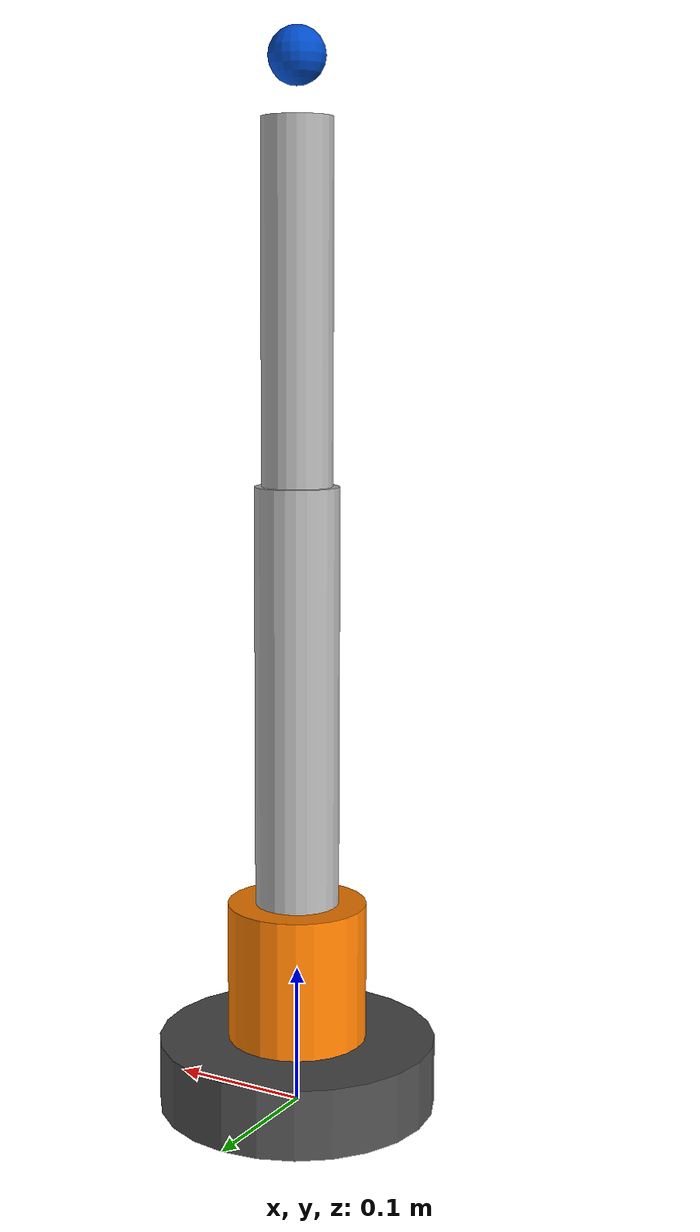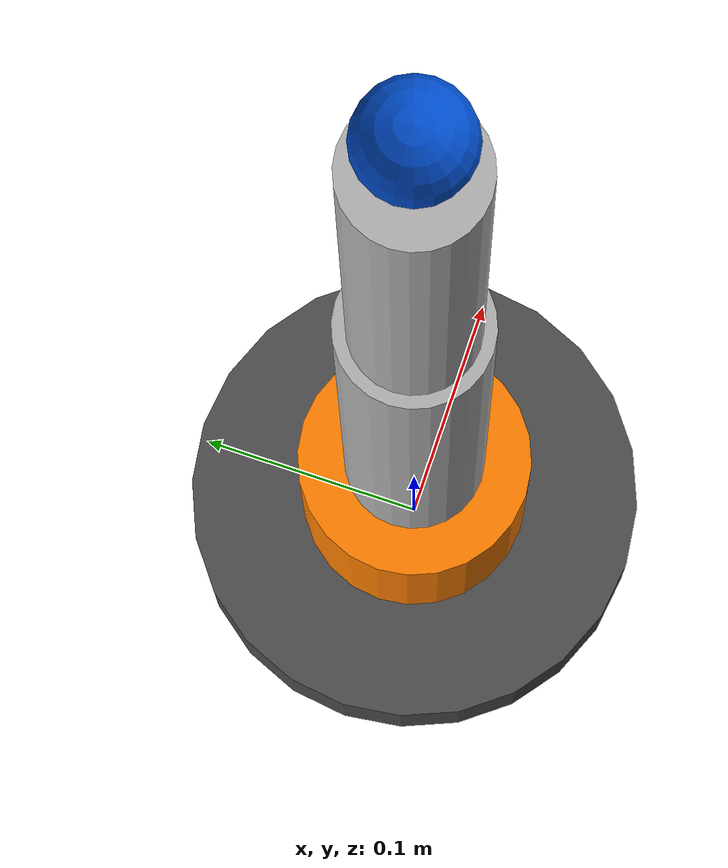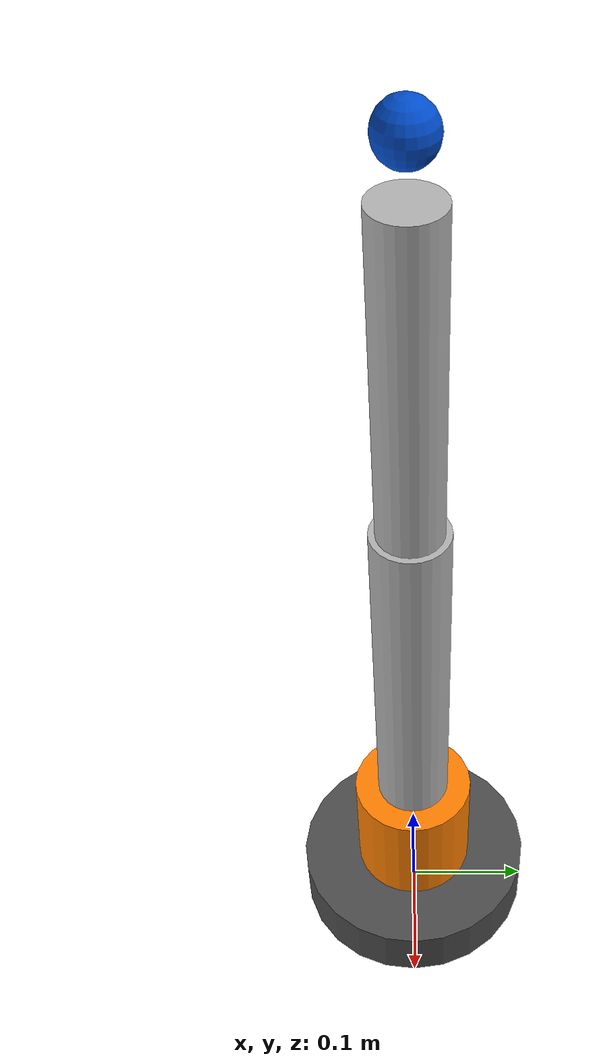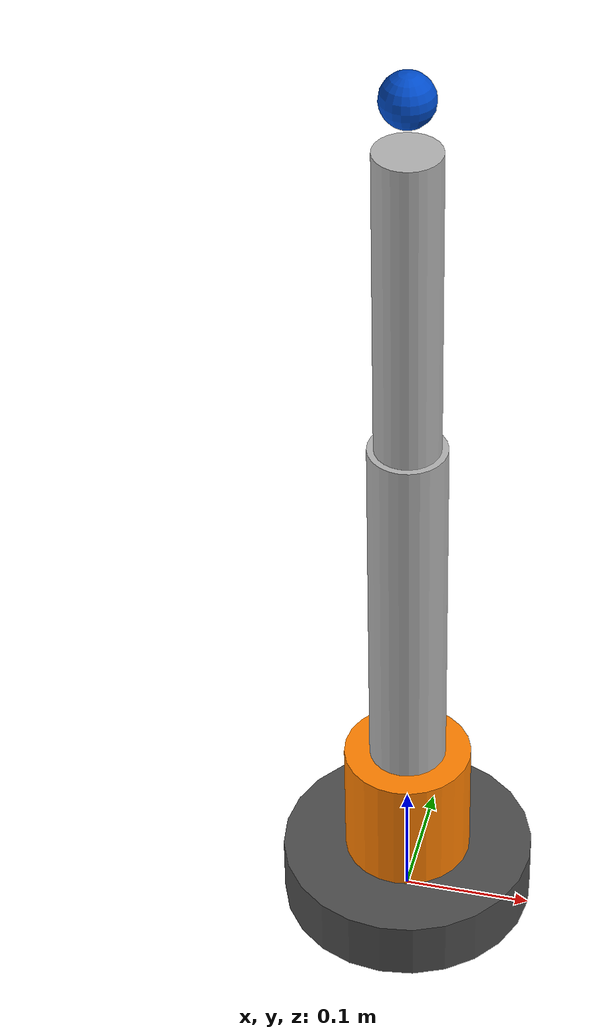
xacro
<?xml version="1.0"?>
<robot name="robotic_arm_4dof" xmlns:xacro="http://www.ros.org/wiki/xacro">

  <!-- Include material and macro definitions -->
  <xacro:include filename="materials.xacro"/>
  <xacro:include filename="macros.xacro"/>

  <!-- Robot parameters -->
  <xacro:property name="pi" value="3.14159"/>

  <!-- Link dimensions -->
  <xacro:property name="base_radius" value="0.1"/>
  <xacro:property name="base_length" value="0.05"/>
  <xacro:property name="shoulder_radius" value="0.05"/>
  <xacro:property name="shoulder_length" value="0.1"/>
  <xacro:property name="upper_arm_length" value="0.3"/>
  <xacro:property name="upper_arm_radius" value="0.03"/>
  <xacro:property name="forearm_length" value="0.25"/>
  <xacro:property name="forearm_radius" value="0.025"/>
  <xacro:property name="wrist_radius" value="0.02"/>
  <xacro:property name="wrist_length" value="0.08"/>

  <!-- Link masses -->
  <xacro:property name="base_mass" value="2.0"/>
  <xacro:property name="shoulder_mass" value="1.0"/>
  <xacro:property name="upper_arm_mass" value="1.5"/>
  <xacro:property name="forearm_mass" value="1.0"/>
  <xacro:property name="wrist_mass" value="0.5"/>

  <!-- Joint limits (in radians) -->
  <xacro:property name="base_joint_lower" value="${-pi}"/>
  <xacro:property name="base_joint_upper" value="${pi}"/>
  <xacro:property name="shoulder_joint_lower" value="${-pi/2}"/>
  <xacro:property name="shoulder_joint_upper" value="${pi/2}"/>
  <xacro:property name="elbow_joint_lower" value="${-pi}"/>
  <xacro:property name="elbow_joint_upper" value="${pi}"/>
  <xacro:property name="wrist_joint_lower" value="${-pi/2}"/>
  <xacro:property name="wrist_joint_upper" value="${pi/2}"/>

  <!-- World link (fixed reference frame) -->
  <link name="world"/>

  <!-- Base link -->
  <link name="base_link">
    <visual>
      <origin xyz="0 0 ${base_length/2}" rpy="0 0 0"/>
      <geometry>
        <cylinder radius="${base_radius}" length="${base_length}"/>
      </geometry>
      <material name="base_material"/>
    </visual>
    <collision>
      <origin xyz="0 0 ${base_length/2}" rpy="0 0 0"/>
      <geometry>
        <cylinder radius="${base_radius}" length="${base_length}"/>
      </geometry>
    </collision>
    <xacro:cylinder_inertial mass="${base_mass}" radius="${base_radius}" length="${base_length}"/>
  </link>

  <!-- Shoulder link -->
  <link name="shoulder_link">
    <visual>
      <origin xyz="0 0 ${shoulder_length/2}" rpy="0 0 0"/>
      <geometry>
        <cylinder radius="${shoulder_radius}" length="${shoulder_length}"/>
      </geometry>
      <material name="joint_material"/>
    </visual>
    <collision>
      <origin xyz="0 0 ${shoulder_length/2}" rpy="0 0 0"/>
      <geometry>
        <cylinder radius="${shoulder_radius}" length="${shoulder_length}"/>
      </geometry>
    </collision>
    <xacro:cylinder_inertial mass="${shoulder_mass}" radius="${shoulder_radius}" length="${shoulder_length}"/>
  </link>

  <!-- Upper arm link -->
  <link name="upper_arm_link">
    <visual>
      <origin xyz="0 0 ${upper_arm_length/2}" rpy="0 0 0"/>
      <geometry>
        <cylinder radius="${upper_arm_radius}" length="${upper_arm_length}"/>
      </geometry>
      <material name="link_material"/>
    </visual>
    <collision>
      <origin xyz="0 0 ${upper_arm_length/2}" rpy="0 0 0"/>
      <geometry>
        <cylinder radius="${upper_arm_radius}" length="${upper_arm_length}"/>
      </geometry>
    </collision>
    <xacro:cylinder_inertial mass="${upper_arm_mass}" radius="${upper_arm_radius}" length="${upper_arm_length}"/>
  </link>

  <!-- Forearm link -->
  <link name="forearm_link">
    <visual>
      <origin xyz="0 0 ${forearm_length/2}" rpy="0 0 0"/>
      <geometry>
        <cylinder radius="${forearm_radius}" length="${forearm_length}"/>
      </geometry>
      <material name="link_material"/>
    </visual>
    <collision>
      <origin xyz="0 0 ${forearm_length/2}" rpy="0 0 0"/>
      <geometry>
        <cylinder radius="${forearm_radius}" length="${forearm_length}"/>
      </geometry>
    </collision>
    <xacro:cylinder_inertial mass="${forearm_mass}" radius="${forearm_radius}" length="${forearm_length}"/>
  </link>

  <!-- Wrist link -->
  <link name="wrist_link">
    <visual>
      <origin xyz="0 0 ${wrist_length/2}" rpy="0 0 0"/>
      <geometry>
        <sphere radius="${wrist_radius}"/>
      </geometry>
      <material name="end_effector_material"/>
    </visual>
    <collision>
      <origin xyz="0 0 ${wrist_length/2}" rpy="0 0 0"/>
      <geometry>
        <sphere radius="${wrist_radius}"/>
      </geometry>
    </collision>
    <xacro:sphere_inertial mass="${wrist_mass}" radius="${wrist_radius}"/>
  </link>

  <!-- Joints -->

  <!-- Fixed joint from world to base -->
  <xacro:fixed_joint name="world_to_base" parent="world" child="base_link" xyz="0 0 0" rpy="0 0 0"/>

  <!-- Base joint (revolute) -->
  <xacro:revolute_joint name="base_joint"
                        parent="base_link"
                        child="shoulder_link"
                        xyz="0 0 ${base_length}"
                        rpy="0 0 0"
                        axis="0 0 1"
                        lower="${base_joint_lower}"
                        upper="${base_joint_upper}"
                        velocity="2.0"
                        effort="100.0"/>

  <!-- Shoulder joint (revolute) -->
  <xacro:revolute_joint name="shoulder_joint"
                        parent="shoulder_link"
                        child="upper_arm_link"
                        xyz="0 0 ${shoulder_length}"
                        rpy="0 0 0"
                        axis="0 1 0"
                        lower="${shoulder_joint_lower}"
                        upper="${shoulder_joint_upper}"
                        velocity="2.0"
                        effort="100.0"/>

  <!-- Elbow joint (revolute) -->
  <xacro:revolute_joint name="elbow_joint"
                        parent="upper_arm_link"
                        child="forearm_link"
                        xyz="0 0 ${upper_arm_length}"
                        rpy="0 0 0"
                        axis="0 1 0"
                        lower="${elbow_joint_lower}"
                        upper="${elbow_joint_upper}"
                        velocity="2.0"
                        effort="50.0"/>

  <!-- Wrist joint (revolute) -->
  <xacro:revolute_joint name="wrist_joint"
                        parent="forearm_link"
                        child="wrist_link"
                        xyz="0 0 ${forearm_length}"
                        rpy="0 0 0"
                        axis="0 1 0"
                        lower="${wrist_joint_lower}"
                        upper="${wrist_joint_upper}"
                        velocity="2.0"
                        effort="25.0"/>

</robot>

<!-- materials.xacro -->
<robot xmlns:xacro="http://www.ros.org/wiki/xacro">

  <!-- Material definitions for the robotic arm -->

  <!-- Base material - Dark gray -->
  <material name="base_material">
    <color rgba="0.3 0.3 0.3 1.0"/>
  </material>

  <!-- Link material - Light gray -->
  <material name="link_material">
    <color rgba="0.7 0.7 0.7 1.0"/>
  </material>

  <!-- Joint material - Orange -->
  <material name="joint_material">
    <color rgba="1.0 0.5 0.0 1.0"/>
  </material>

  <!-- End effector material - Blue -->
  <material name="end_effector_material">
    <color rgba="0.0 0.3 0.8 1.0"/>
  </material>

  <!-- Gazebo materials for simulation -->
  <gazebo reference="base_link">
    <material>Gazebo/DarkGrey</material>
  </gazebo>

  <gazebo reference="shoulder_link">
    <material>Gazebo/Grey</material>
  </gazebo>

  <gazebo reference="upper_arm_link">
    <material>Gazebo/Grey</material>
  </gazebo>

  <gazebo reference="forearm_link">
    <material>Gazebo/Grey</material>
  </gazebo>

  <gazebo reference="wrist_link">
    <material>Gazebo/Blue</material>
  </gazebo>

</robot>

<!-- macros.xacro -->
<robot xmlns:xacro="http://www.ros.org/wiki/xacro">

  <!-- Macro for inertial properties of a box -->
  <xacro:macro name="box_inertial" params="mass x y z">
    <inertial>
      <mass value="${mass}"/>
      <inertia ixx="${mass * (y*y + z*z) / 12.0}"
               ixy="0.0" ixz="0.0"
               iyy="${mass * (x*x + z*z) / 12.0}"
               iyz="0.0"
               izz="${mass * (x*x + y*y) / 12.0}"/>
    </inertial>
  </xacro:macro>

  <!-- Macro for inertial properties of a cylinder -->
  <xacro:macro name="cylinder_inertial" params="mass radius length">
    <inertial>
      <mass value="${mass}"/>
      <inertia ixx="${mass * (3*radius*radius + length*length) / 12.0}"
               ixy="0.0" ixz="0.0"
               iyy="${mass * (3*radius*radius + length*length) / 12.0}"
               iyz="0.0"
               izz="${mass * radius*radius / 2.0}"/>
    </inertial>
  </xacro:macro>

  <!-- Macro for inertial properties of a sphere -->
  <xacro:macro name="sphere_inertial" params="mass radius">
    <inertial>
      <mass value="${mass}"/>
      <inertia ixx="${2.0 * mass * radius*radius / 5.0}"
               ixy="0.0" ixz="0.0"
               iyy="${2.0 * mass * radius*radius / 5.0}"
               iyz="0.0"
               izz="${2.0 * mass * radius*radius / 5.0}"/>
    </inertial>
  </xacro:macro>

  <!-- Macro for creating a revolute joint -->
  <xacro:macro name="revolute_joint" params="name parent child xyz rpy axis lower upper velocity effort">
    <joint name="${name}" type="revolute">
      <parent link="${parent}"/>
      <child link="${child}"/>
      <origin xyz="${xyz}" rpy="${rpy}"/>
      <axis xyz="${axis}"/>
      <limit lower="${lower}" upper="${upper}" velocity="${velocity}" effort="${effort}"/>
      <dynamics damping="0.1" friction="0.1"/>
    </joint>
  </xacro:macro>

  <!-- Macro for creating a fixed joint -->
  <xacro:macro name="fixed_joint" params="name parent child xyz rpy">
    <joint name="${name}" type="fixed">
      <parent link="${parent}"/>
      <child link="${child}"/>
      <origin xyz="${xyz}" rpy="${rpy}"/>
    </joint>
  </xacro:macro>

</robot>
